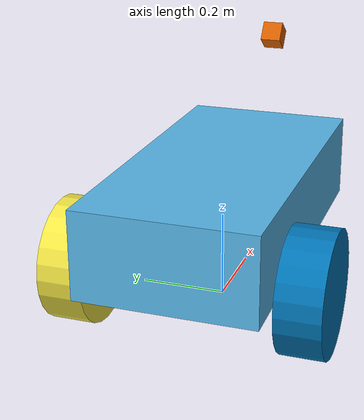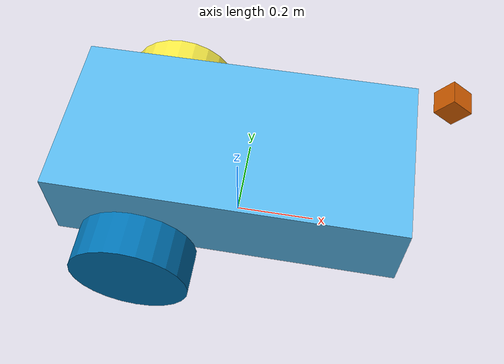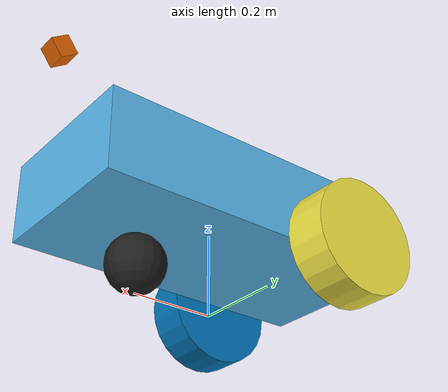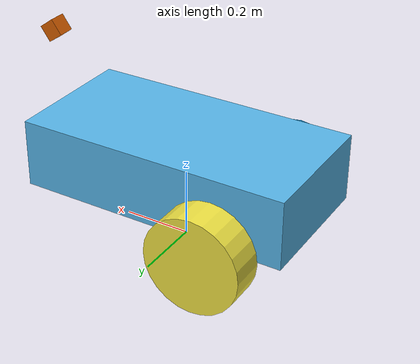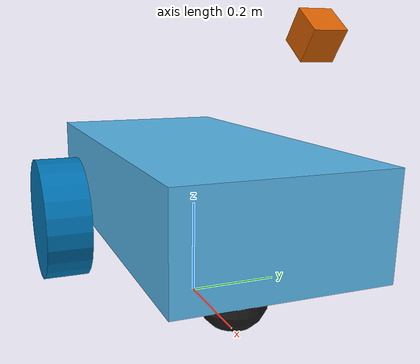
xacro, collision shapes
<?xml version="1.0"?>
<robot name="viratbot" xmlns:xacro="http://www.ros.org/wiki/xacro">
    <xacro:include filename="$(find viratbot_description)/urdf/viratbot.gazebo.xacro" />

    <link name="base_link"></link>

    <!-- Chassis -->
    <xacro:property name="c_m" value="10" />
    <xacro:property name="c_l" value="0.8" />
    <xacro:property name="c_b" value="0.4" />
    <xacro:property name="c_h" value="0.2" />

    <link name="chassis">

        <inertial>
            <mass value="10" />
            <inertia ixx="${((1/12)*c_m*(c_b*c_b + c_h*c_h)) + c_m*c_h/2*c_h/2}" ixy="0" ixz="0" iyy="${((1/12)*c_m*(c_l*c_l + c_h*c_h)) + c_m*c_h/2*c_h/2}" iyz="0" izz="${(1/12)*c_m*(c_b*c_b + c_l*c_l)}" />
            <origin xyz="0 0 0" rpy="0 0 0" />
        </inertial>

        <collision>
            <origin rpy="0 0 0" xyz="0 0 0.1" />
            <geometry>
                <box size="0.8 0.4 0.2" />
            </geometry>
        </collision>

        <visual>
            <origin rpy="0 0 0" xyz="-0.2 0 0" />
            <geometry>
                <mesh filename="package://viratbot_description/meshes/bot2.dae" scale="0.8 0.8 0.8" />
            </geometry>
        </visual>

    </link>

    <joint name="base_chassis_joint" type="fixed">
        <parent link="base_link" />
        <child link="chassis" />
        <origin xyz="0 0 0.14" rpy="0 0 0" />
    </joint>

    <!-- Caster Front -->
    <xacro:property name="cas_m" value="0.3" />
    <xacro:property name="cas_r" value="0.07" />

    <link name="caster">

        <inertial>
            <mass value="${cas_m}" />
            <inertia ixx="${(2/5)*cas_m*cas_r*cas_r}" ixy="0" ixz="0" iyy="${(2/5)*cas_m*cas_r*cas_r}" iyz="0" izz="${(2/5)*cas_m*cas_r*cas_r}" />
        </inertial>

        <collision>
            <origin xyz="0 0 0" rpy="0 0 0" />
            <geometry>
                <sphere radius="0.07" />
            </geometry>
        </collision>

        <visual>
            <origin xyz="0 0 0" rpy="0 0 0" />
            <geometry>
                <sphere radius="0.07" />
            </geometry>
        </visual>

        <visual>
            <origin xyz="0 0 0.08" rpy="0 0 0" />
            <geometry>
                <cylinder radius="0.01" length="0.05" />
            </geometry>
        </visual>

    </link>

    <joint name="caster_chassis_joint" type="fixed">

        <parent link="chassis" />
        <child link="caster" />
        <axis xyz="0 1 0" />
        <origin xyz="0.2 0 -0.07" rpy="0 0 0" />

    </joint>

    <!-- Left ad Right Wheels -->
    <xacro:property name="w_m" value="1" />
    <xacro:property name="w_r" value="0.14" />
    <xacro:property name="w_l" value="0.1" />

    <link name="right_wheel">

        <inertial>
            <mass value="1" />
            <inertia ixx="${(1/12)*w_m*(3*w_r*w_r + w_l*w_l)}" ixy="0" ixz="0" iyy="${(1/2)*w_m*w_r*w_r}" iyz="0" izz="${(1/12)*w_m*(3*w_r*w_r + w_l*w_l)}" />
            <origin xyz="0 0 0" rpy="0 1.5707 1.5707" />
        </inertial>

        <collision>
            <origin xyz="0 0 0" rpy="0 1.5707 1.5707" />
            <geometry>
                <cylinder radius="0.14" length="0.1" />
            </geometry>
        </collision>

        <visual>
            <origin xyz="0 0 0" rpy="0 1.5707 0" />
            <geometry>
                <mesh filename="package://viratbot_description/meshes/tyre1.dae" scale="1 1 1" />
            </geometry>
        </visual>

    </link>

    <link name="left_wheel">

        <inertial>
            <mass value="1" />
            <inertia ixx="${(1/12)*w_m*(3*w_r*w_r + w_l*w_l)}" ixy="0" ixz="0" iyy="${(1/2)*w_m*w_r*w_r}" iyz="0" izz="${(1/12)*w_m*(3*w_r*w_r + w_l*w_l)}" />
            <origin xyz="0 0 0" rpy="0 1.5707 1.5707" />
        </inertial>

        <collision>
            <origin xyz="0 0 0" rpy="0 1.5707 1.5707" />
            <geometry>
                <cylinder radius="0.14" length="0.1" />
            </geometry>
        </collision>

        <visual>
            <origin xyz="0 0 0" rpy="0 1.5707 0" />
            <geometry>
                <mesh filename="package://viratbot_description/meshes/tyre1.dae" scale="1 1 1" />
            </geometry>
        </visual>

    </link>

    <joint name="right_wheel_hinge" type="continuous">
        <parent link="chassis" />
        <child link="right_wheel" />
        <axis xyz="0 1 0" />
        <origin xyz="-0.2 0.26 0" rpy="0 0 0" />
    </joint>

    <joint name="left_wheel_hinge" type="continuous">
        <parent link="chassis" />
        <child link="left_wheel" />
        <axis xyz="0 1 0" />
        <origin xyz="-0.2 -0.26 0" rpy="0 0 0" />
    </joint>

    <!-- Camera -->
    <link name="camera">

        <inertial>
            <mass value="0.05" />
            <inertia ixx="0.0005" ixy="0" ixz="0" iyy="0.0005" iyz="0" izz="0.0005" />
        </inertial>

        <collision>
            <origin xyz="0 0 0" rpy="0 0 0" />
            <geometry>
                <box size="0.05 0.05 0.05" />
            </geometry>
        </collision>

        <visual>
            <origin xyz="0 0 0" rpy="0 0 0" />
            <geometry>
                <box size="0.05 0.05 0.05" />
            </geometry>
        </visual>

    </link>

    <joint name="camera_joint" type="fixed">

        <axis xyz="0 0 1" />
        <origin xyz="0.43 0 0.4" rpy="0 0.63 0" />
        <parent link="chassis" />
        <child link="camera" />

    </joint>

    <!-- Frame for reference -->
    <link name="camera_base"></link>
    <joint name="camera_b_chassis" type="fixed">
        <origin xyz="0.43 0 0" rpy="0 0 0" />
        <parent link="base_link" />
        <child link="camera_base" />
    </joint>

</robot>
